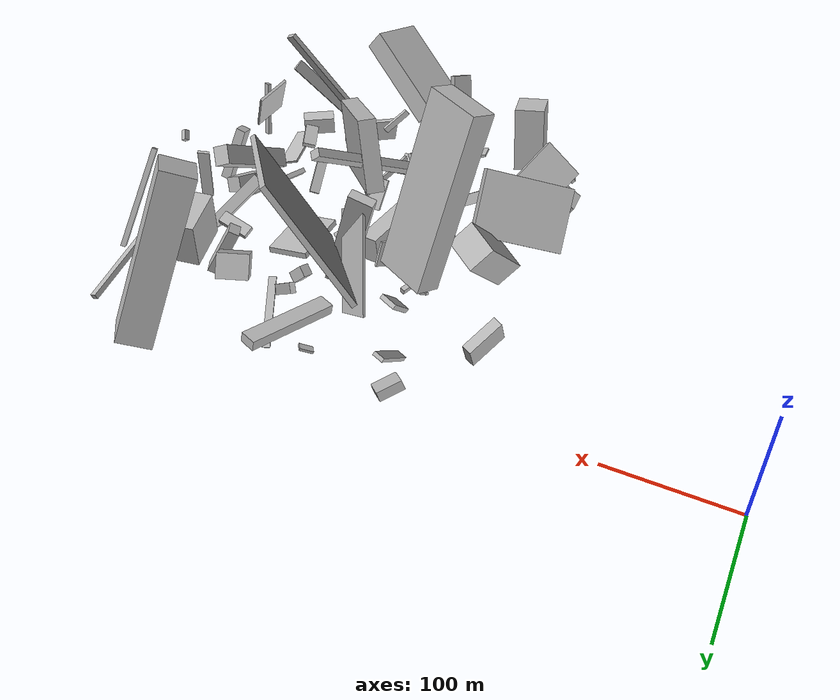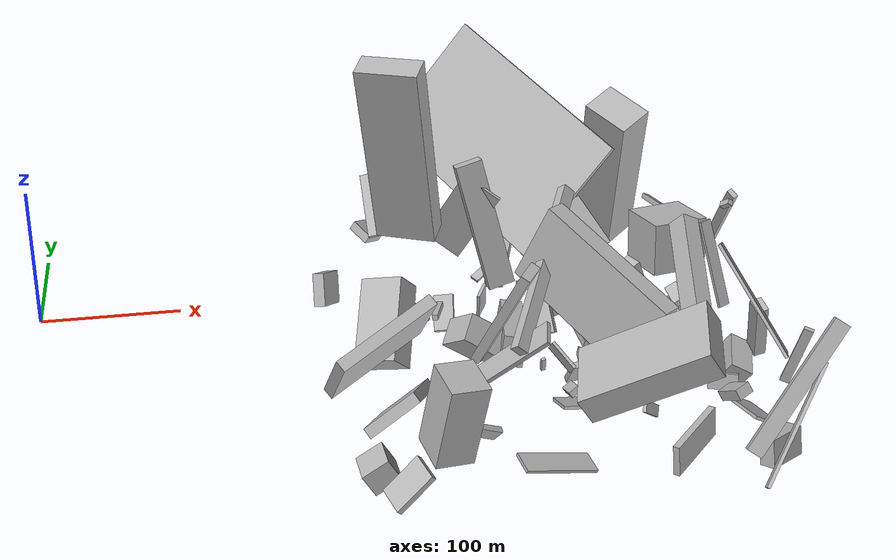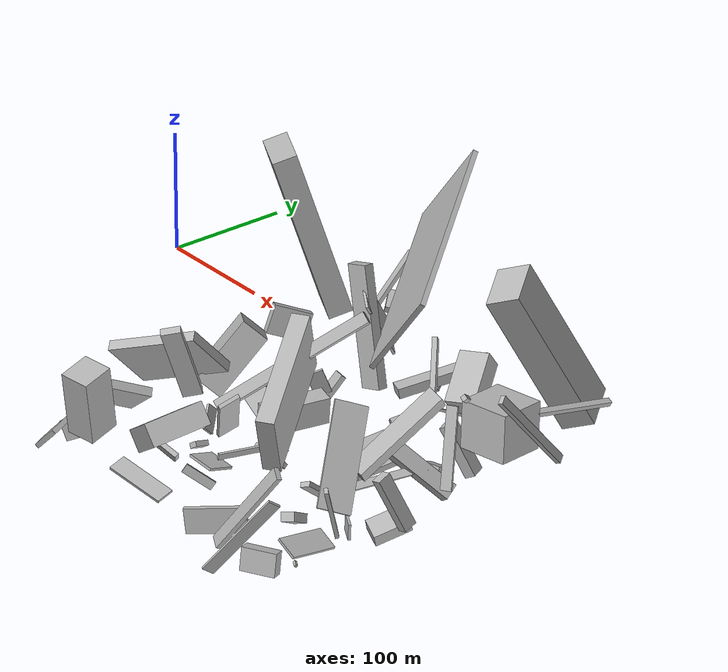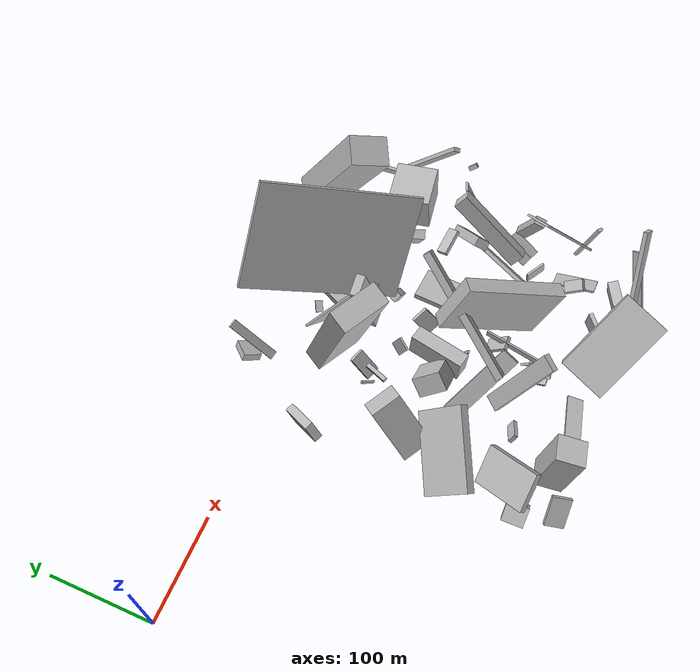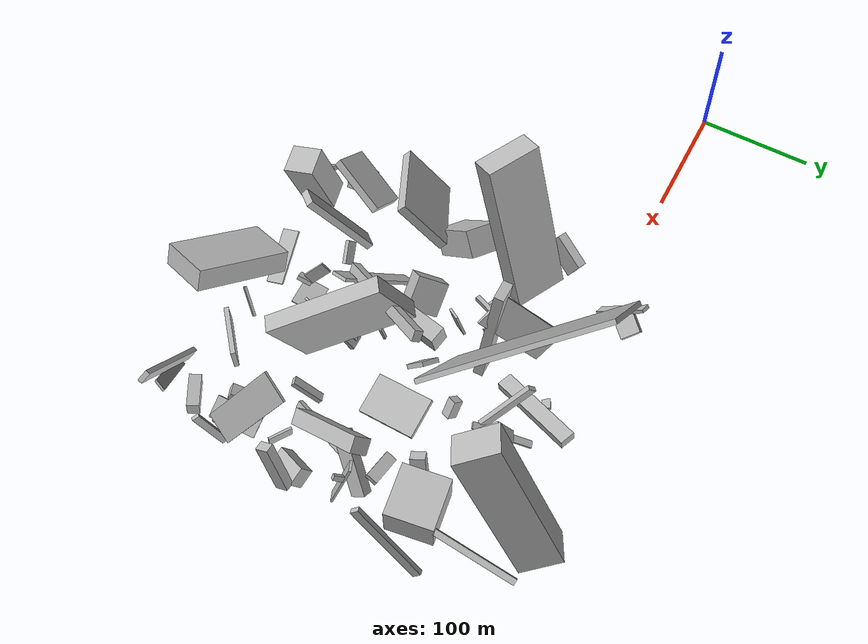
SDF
<sdf version="1.6">
 <world name="default">
  <model name="building_6">
   <static>0</static>
   <pose>383.57789830390834 -204.22839032764224 56.90118892235914 1.1419513842508067 -0.03035400887190286 -2.5071396313396574</pose>
   <link name="link">
    <gravity>0</gravity>
    <pose>0 0 50.0 0 0 0</pose>
    <collision name="collision"><geometry><box><size>14 57 100</size></box></geometry></collision>
    <visual name="visual">
     <cast_shadows>0</cast_shadows>
     <geometry><box><size>14 57 100</size></box></geometry>
     <material>
      <script>
       <uri>model://HANNAS_wall/materials/scripts</uri>
       <uri>model://HANNAS_wall/materials/textures</uri>
       <name>vrc/HANNAS_wall</name>
      </script>
     </material>
    </visual>
   </link>
  </model>
  <model name="building_9">
   <static>0</static>
   <pose>304.2907745728655 -58.22759774324887 75.836507082875 1.3048529523502757 0.08205028797164456 1.6205734096075415</pose>
   <link name="link">
    <gravity>0</gravity>
    <pose>0 0 9.5 0 0 0</pose>
    <collision name="collision"><geometry><box><size>8 95 19</size></box></geometry></collision>
    <visual name="visual">
     <cast_shadows>0</cast_shadows>
     <geometry><box><size>8 95 19</size></box></geometry>
     <material>
      <script>
       <uri>model://HANNAS_wall/materials/scripts</uri>
       <uri>model://HANNAS_wall/materials/textures</uri>
       <name>vrc/HANNAS_wall</name>
      </script>
     </material>
    </visual>
   </link>
  </model>
  <model name="building_11">
   <static>0</static>
   <pose>439.47429550103556 3.416906068397626 78.5099401154982 0.8400165274937765 -1.0716157159774935 -1.8438272145721253</pose>
   <link name="link">
    <gravity>0</gravity>
    <pose>0 0 18.0 0 0 0</pose>
    <collision name="collision"><geometry><box><size>132 27 36</size></box></geometry></collision>
    <visual name="visual">
     <cast_shadows>0</cast_shadows>
     <geometry><box><size>132 27 36</size></box></geometry>
     <material>
      <script>
       <uri>model://HANNAS_wall/materials/scripts</uri>
       <uri>model://HANNAS_wall/materials/textures</uri>
       <name>vrc/HANNAS_wall</name>
      </script>
     </material>
    </visual>
   </link>
  </model>
  <model name="building_14">
   <static>0</static>
   <pose>284.95008669527004 -123.20067489249129 24.118417519923735 0.9040310014824263 0.587848842570337 0.025496455703872795</pose>
   <link name="link">
    <gravity>0</gravity>
    <pose>0 0 13.5 0 0 0</pose>
    <collision name="collision"><geometry><box><size>29 19 27</size></box></geometry></collision>
    <visual name="visual">
     <cast_shadows>0</cast_shadows>
     <geometry><box><size>29 19 27</size></box></geometry>
     <material>
      <script>
       <uri>model://HANNAS_wall/materials/scripts</uri>
       <uri>model://HANNAS_wall/materials/textures</uri>
       <name>vrc/HANNAS_wall</name>
      </script>
     </material>
    </visual>
   </link>
  </model>
  <model name="building_15">
   <static>0</static>
   <pose>454.4709440644848 -47.34934510154349 33.18940693092354 -0.06209678522897362 -0.0214763122014824 0.1641329490324192</pose>
   <link name="link">
    <gravity>0</gravity>
    <pose>0 0 19.0 0 0 0</pose>
    <collision name="collision"><geometry><box><size>41 39 38</size></box></geometry></collision>
    <visual name="visual">
     <cast_shadows>0</cast_shadows>
     <geometry><box><size>41 39 38</size></box></geometry>
     <material>
      <script>
       <uri>model://HANNAS_wall/materials/scripts</uri>
       <uri>model://HANNAS_wall/materials/textures</uri>
       <name>vrc/HANNAS_wall</name>
      </script>
     </material>
    </visual>
   </link>
  </model>
  <model name="building_17">
   <static>0</static>
   <pose>279.39121196128315 -73.68338280042434 27.057425863141347 -1.5437950387450834 0.12738077929289962 2.7752094283203967</pose>
   <link name="link">
    <gravity>0</gravity>
    <pose>0 0 11.0 0 0 0</pose>
    <collision name="collision"><geometry><box><size>4 4 22</size></box></geometry></collision>
    <visual name="visual">
     <cast_shadows>0</cast_shadows>
     <geometry><box><size>4 4 22</size></box></geometry>
     <material>
      <script>
       <uri>model://HANNAS_wall/materials/scripts</uri>
       <uri>model://HANNAS_wall/materials/textures</uri>
       <name>vrc/HANNAS_wall</name>
      </script>
     </material>
    </visual>
   </link>
  </model>
  <model name="building_23">
   <static>0</static>
   <pose>394.47325753871127 -260.15664879753274 20.16209631838445 1.6265225817026203 0.11527512826865162 -2.408205424874494</pose>
   <link name="link">
    <gravity>0</gravity>
    <pose>0 0 2.0 0 0 0</pose>
    <collision name="collision"><geometry><box><size>46 20 4</size></box></geometry></collision>
    <visual name="visual">
     <cast_shadows>0</cast_shadows>
     <geometry><box><size>46 20 4</size></box></geometry>
     <material>
      <script>
       <uri>model://HANNAS_wall/materials/scripts</uri>
       <uri>model://HANNAS_wall/materials/textures</uri>
       <name>vrc/HANNAS_wall</name>
      </script>
     </material>
    </visual>
   </link>
  </model>
  <model name="building_24">
   <static>0</static>
   <pose>368.52958089554613 -74.11320984580192 97.15929962290211 -0.8549433892645674 -0.9122947049014914 0.001873142515514601</pose>
   <link name="link">
    <gravity>0</gravity>
    <pose>0 0 75.0 0 0 0</pose>
    <collision name="collision"><geometry><box><size>96 4 150</size></box></geometry></collision>
    <visual name="visual">
     <cast_shadows>0</cast_shadows>
     <geometry><box><size>96 4 150</size></box></geometry>
     <material>
      <script>
       <uri>model://HANNAS_wall/materials/scripts</uri>
       <uri>model://HANNAS_wall/materials/textures</uri>
       <name>vrc/HANNAS_wall</name>
      </script>
     </material>
    </visual>
   </link>
  </model>
  <model name="building_25">
   <static>0</static>
   <pose>333.89373754074586 -3.4831397383688563 30.375352631277753 1.3567494582369424 1.3775928349575601 0.9793957775255684</pose>
   <link name="link">
    <gravity>0</gravity>
    <pose>0 0 6.5 0 0 0</pose>
    <collision name="collision"><geometry><box><size>8 75 13</size></box></geometry></collision>
    <visual name="visual">
     <cast_shadows>0</cast_shadows>
     <geometry><box><size>8 75 13</size></box></geometry>
     <material>
      <script>
       <uri>model://HANNAS_wall/materials/scripts</uri>
       <uri>model://HANNAS_wall/materials/textures</uri>
       <name>vrc/HANNAS_wall</name>
      </script>
     </material>
    </visual>
   </link>
  </model>
  <model name="building_26">
   <static>0</static>
   <pose>251.39991961904443 -155.02052538114827 63.008092974921894 2.060386175716649 -0.8365651261437685 -1.4709617958473813</pose>
   <link name="link">
    <gravity>0</gravity>
    <pose>0 0 37.0 0 0 0</pose>
    <collision name="collision"><geometry><box><size>52 8 74</size></box></geometry></collision>
    <visual name="visual">
     <cast_shadows>0</cast_shadows>
     <geometry><box><size>52 8 74</size></box></geometry>
     <material>
      <script>
       <uri>model://HANNAS_wall/materials/scripts</uri>
       <uri>model://HANNAS_wall/materials/textures</uri>
       <name>vrc/HANNAS_wall</name>
      </script>
     </material>
    </visual>
   </link>
  </model>
  <model name="building_27">
   <static>0</static>
   <pose>216.03180781575657 -268.60667016050047 23.911611604162815 -1.8597437752975214 0.7883690492993546 -3.0548124770656906</pose>
   <link name="link">
    <gravity>0</gravity>
    <pose>0 0 9.0 0 0 0</pose>
    <collision name="collision"><geometry><box><size>28 4 18</size></box></geometry></collision>
    <visual name="visual">
     <cast_shadows>0</cast_shadows>
     <geometry><box><size>28 4 18</size></box></geometry>
     <material>
      <script>
       <uri>model://HANNAS_wall/materials/scripts</uri>
       <uri>model://HANNAS_wall/materials/textures</uri>
       <name>vrc/HANNAS_wall</name>
      </script>
     </material>
    </visual>
   </link>
  </model>
  <model name="building_30">
   <static>0</static>
   <pose>383.60919287319524 -109.015194323443 19.612738985877396 3.0942228701523478 -0.1732060797067562 3.1179830220011135</pose>
   <link name="link">
    <gravity>0</gravity>
    <pose>0 0 2.5 0 0 0</pose>
    <collision name="collision"><geometry><box><size>34 49 5</size></box></geometry></collision>
    <visual name="visual">
     <cast_shadows>0</cast_shadows>
     <geometry><box><size>34 49 5</size></box></geometry>
     <material>
      <script>
       <uri>model://HANNAS_wall/materials/scripts</uri>
       <uri>model://HANNAS_wall/materials/textures</uri>
       <name>vrc/HANNAS_wall</name>
      </script>
     </material>
    </visual>
   </link>
  </model>
  <model name="building_38">
   <static>0</static>
   <pose>277.00681764101626 -214.70572314998705 13.386953115068813 2.1299096249763987 0.4248775620785343 0.31512837918882247</pose>
   <link name="link">
    <gravity>0</gravity>
    <pose>0 0 2.0 0 0 0</pose>
    <collision name="collision"><geometry><box><size>20 9 4</size></box></geometry></collision>
    <visual name="visual">
     <cast_shadows>0</cast_shadows>
     <geometry><box><size>20 9 4</size></box></geometry>
     <material>
      <script>
       <uri>model://HANNAS_wall/materials/scripts</uri>
       <uri>model://HANNAS_wall/materials/textures</uri>
       <name>vrc/HANNAS_wall</name>
      </script>
     </material>
    </visual>
   </link>
  </model>
  <model name="building_48">
   <static>0</static>
   <pose>475.56276790490176 -95.75335472274831 97.16094596552546 -0.7807655237917941 -0.6749512489655869 1.0410163484661379</pose>
   <link name="link">
    <gravity>0</gravity>
    <pose>0 0 2.0 0 0 0</pose>
    <collision name="collision"><geometry><box><size>4 8 4</size></box></geometry></collision>
    <visual name="visual">
     <cast_shadows>0</cast_shadows>
     <geometry><box><size>4 8 4</size></box></geometry>
     <material>
      <script>
       <uri>model://HANNAS_wall/materials/scripts</uri>
       <uri>model://HANNAS_wall/materials/textures</uri>
       <name>vrc/HANNAS_wall</name>
      </script>
     </material>
    </visual>
   </link>
  </model>
  <model name="building_49">
   <static>0</static>
   <pose>344.60255442947926 -113.049276215063 17.49550386068492 -0.5447663231419287 -0.47890523572554733 -0.5494487582894221</pose>
   <link name="link">
    <gravity>0</gravity>
    <pose>0 0 11.5 0 0 0</pose>
    <collision name="collision"><geometry><box><size>16 4 23</size></box></geometry></collision>
    <visual name="visual">
     <cast_shadows>0</cast_shadows>
     <geometry><box><size>16 4 23</size></box></geometry>
     <material>
      <script>
       <uri>model://HANNAS_wall/materials/scripts</uri>
       <uri>model://HANNAS_wall/materials/textures</uri>
       <name>vrc/HANNAS_wall</name>
      </script>
     </material>
    </visual>
   </link>
  </model>
  <model name="building_51">
   <static>0</static>
   <pose>457.0648051527439 -156.1016571031237 15.28496218802949 2.044500118852943 -0.2970143607141097 1.2149989853647158</pose>
   <link name="link">
    <gravity>0</gravity>
    <pose>0 0 8.0 0 0 0</pose>
    <collision name="collision"><geometry><box><size>29 13 16</size></box></geometry></collision>
    <visual name="visual">
     <cast_shadows>0</cast_shadows>
     <geometry><box><size>29 13 16</size></box></geometry>
     <material>
      <script>
       <uri>model://HANNAS_wall/materials/scripts</uri>
       <uri>model://HANNAS_wall/materials/textures</uri>
       <name>vrc/HANNAS_wall</name>
      </script>
     </material>
    </visual>
   </link>
  </model>
  <model name="building_55">
   <static>0</static>
   <pose>303.9839218128122 -189.9037142034581 50.67838657084822 0.8230489497201009 -0.7176348545238028 -3.1207991166232714</pose>
   <link name="link">
    <gravity>0</gravity>
    <pose>0 0 64.0 0 0 0</pose>
    <collision name="collision"><geometry><box><size>9 7 128</size></box></geometry></collision>
    <visual name="visual">
     <cast_shadows>0</cast_shadows>
     <geometry><box><size>9 7 128</size></box></geometry>
     <material>
      <script>
       <uri>model://HANNAS_wall/materials/scripts</uri>
       <uri>model://HANNAS_wall/materials/textures</uri>
       <name>vrc/HANNAS_wall</name>
      </script>
     </material>
    </visual>
   </link>
  </model>
  <model name="building_63">
   <static>0</static>
   <pose>243.39934692082795 -258.675238442121 29.95810248764922 0.19226133190994682 0.07836951289636694 0.20381542422882498</pose>
   <link name="link">
    <gravity>0</gravity>
    <pose>0 0 27.0 0 0 0</pose>
    <collision name="collision"><geometry><box><size>24 26 54</size></box></geometry></collision>
    <visual name="visual">
     <cast_shadows>0</cast_shadows>
     <geometry><box><size>24 26 54</size></box></geometry>
     <material>
      <script>
       <uri>model://HANNAS_wall/materials/scripts</uri>
       <uri>model://HANNAS_wall/materials/textures</uri>
       <name>vrc/HANNAS_wall</name>
      </script>
     </material>
    </visual>
   </link>
  </model>
  <model name="building_67">
   <static>0</static>
   <pose>238.40203805918202 -116.58249721425688 34.30538912470565 -0.37425631309947094 -0.829793623421433 1.2757103410894608</pose>
   <link name="link">
    <gravity>0</gravity>
    <pose>0 0 11.5 0 0 0</pose>
    <collision name="collision"><geometry><box><size>56 29 23</size></box></geometry></collision>
    <visual name="visual">
     <cast_shadows>0</cast_shadows>
     <geometry><box><size>56 29 23</size></box></geometry>
     <material>
      <script>
       <uri>model://HANNAS_wall/materials/scripts</uri>
       <uri>model://HANNAS_wall/materials/textures</uri>
       <name>vrc/HANNAS_wall</name>
      </script>
     </material>
    </visual>
   </link>
  </model>
  <model name="building_70">
   <static>0</static>
   <pose>446.29511330368473 -273.44160596619275 58.53098253178112 -2.1500128974303196 -0.9368122692161301 0.27855371460841205</pose>
   <link name="link">
    <gravity>0</gravity>
    <pose>0 0 2.0 0 0 0</pose>
    <collision name="collision"><geometry><box><size>91 10 4</size></box></geometry></collision>
    <visual name="visual">
     <cast_shadows>0</cast_shadows>
     <geometry><box><size>91 10 4</size></box></geometry>
     <material>
      <script>
       <uri>model://HANNAS_wall/materials/scripts</uri>
       <uri>model://HANNAS_wall/materials/textures</uri>
       <name>vrc/HANNAS_wall</name>
      </script>
     </material>
    </visual>
   </link>
  </model>
  <model name="building_73">
   <static>0</static>
   <pose>327.7516120942917 -229.92359675743032 42.88074563764401 -1.871699953292934 -0.5896684478809172 0.21468918232423242</pose>
   <link name="link">
    <gravity>0</gravity>
    <pose>0 0 6.0 0 0 0</pose>
    <collision name="collision"><geometry><box><size>7 4 12</size></box></geometry></collision>
    <visual name="visual">
     <cast_shadows>0</cast_shadows>
     <geometry><box><size>7 4 12</size></box></geometry>
     <material>
      <script>
       <uri>model://HANNAS_wall/materials/scripts</uri>
       <uri>model://HANNAS_wall/materials/textures</uri>
       <name>vrc/HANNAS_wall</name>
      </script>
     </material>
    </visual>
   </link>
  </model>
  <model name="building_82">
   <static>0</static>
   <pose>262.1505922465356 -46.76354964170182 73.44899717029037 0.3101156944267198 -0.015507979285784396 -0.4831144540270824</pose>
   <link name="link">
    <gravity>0</gravity>
    <pose>0 0 68.5 0 0 0</pose>
    <collision name="collision"><geometry><box><size>42 19 137</size></box></geometry></collision>
    <visual name="visual">
     <cast_shadows>0</cast_shadows>
     <geometry><box><size>42 19 137</size></box></geometry>
     <material>
      <script>
       <uri>model://HANNAS_wall/materials/scripts</uri>
       <uri>model://HANNAS_wall/materials/textures</uri>
       <name>vrc/HANNAS_wall</name>
      </script>
     </material>
    </visual>
   </link>
  </model>
  <model name="building_83">
   <static>0</static>
   <pose>314.46042327420514 -128.22524931024626 19.00306306879429 -0.11455420945809416 0.0025972512434748007 -1.7672561805548386</pose>
   <link name="link">
    <gravity>0</gravity>
    <pose>0 0 11.0 0 0 0</pose>
    <collision name="collision"><geometry><box><size>52 15 22</size></box></geometry></collision>
    <visual name="visual">
     <cast_shadows>0</cast_shadows>
     <geometry><box><size>52 15 22</size></box></geometry>
     <material>
      <script>
       <uri>model://HANNAS_wall/materials/scripts</uri>
       <uri>model://HANNAS_wall/materials/textures</uri>
       <name>vrc/HANNAS_wall</name>
      </script>
     </material>
    </visual>
   </link>
  </model>
  <model name="building_85">
   <static>0</static>
   <pose>231.34351890339735 -204.7583001711951 31.970573675961937 1.0941180418454646 -0.6709670635515399 -0.06488631645940925</pose>
   <link name="link">
    <gravity>0</gravity>
    <pose>0 0 26.0 0 0 0</pose>
    <collision name="collision"><geometry><box><size>36 7 52</size></box></geometry></collision>
    <visual name="visual">
     <cast_shadows>0</cast_shadows>
     <geometry><box><size>36 7 52</size></box></geometry>
     <material>
      <script>
       <uri>model://HANNAS_wall/materials/scripts</uri>
       <uri>model://HANNAS_wall/materials/textures</uri>
       <name>vrc/HANNAS_wall</name>
      </script>
     </material>
    </visual>
   </link>
  </model>
  <model name="building_91">
   <static>0</static>
   <pose>467.8556388498441 -8.5840653780253 55.2397305254703 -0.38086721630618986 -0.17860737742972727 -1.6136415428610005</pose>
   <link name="link">
    <gravity>0</gravity>
    <pose>0 0 2.0 0 0 0</pose>
    <collision name="collision"><geometry><box><size>105 5 4</size></box></geometry></collision>
    <visual name="visual">
     <cast_shadows>0</cast_shadows>
     <geometry><box><size>105 5 4</size></box></geometry>
     <material>
      <script>
       <uri>model://HANNAS_wall/materials/scripts</uri>
       <uri>model://HANNAS_wall/materials/textures</uri>
       <name>vrc/HANNAS_wall</name>
      </script>
     </material>
    </visual>
   </link>
  </model>
  <model name="building_97">
   <static>0</static>
   <pose>401.54535719932755 -179.17557603337568 20.039173962307437 -1.0896380192072743 -0.6962746204409888 -1.4679566995114668</pose>
   <link name="link">
    <gravity>0</gravity>
    <pose>0 0 4.0 0 0 0</pose>
    <collision name="collision"><geometry><box><size>28 4 8</size></box></geometry></collision>
    <visual name="visual">
     <cast_shadows>0</cast_shadows>
     <geometry><box><size>28 4 8</size></box></geometry>
     <material>
      <script>
       <uri>model://HANNAS_wall/materials/scripts</uri>
       <uri>model://HANNAS_wall/materials/textures</uri>
       <name>vrc/HANNAS_wall</name>
      </script>
     </material>
    </visual>
   </link>
  </model>
  <model name="building_103">
   <static>0</static>
   <pose>454.3502702082612 -191.60340568971594 74.89543578578963 2.2173265603349654 -0.3592588808189664 -2.0475599191577296</pose>
   <link name="link">
    <gravity>0</gravity>
    <pose>0 0 1.0 0 0 0</pose>
    <collision name="collision"><geometry><box><size>26 80 2</size></box></geometry></collision>
    <visual name="visual">
     <cast_shadows>0</cast_shadows>
     <geometry><box><size>26 80 2</size></box></geometry>
     <material>
      <script>
       <uri>model://HANNAS_wall/materials/scripts</uri>
       <uri>model://HANNAS_wall/materials/textures</uri>
       <name>vrc/HANNAS_wall</name>
      </script>
     </material>
    </visual>
   </link>
  </model>
  <model name="building_104">
   <static>0</static>
   <pose>362.0645276272539 -71.76567061837356 16.715074042652972 1.2045574201277034 -0.8377932131333217 3.0359619460967457</pose>
   <link name="link">
    <gravity>0</gravity>
    <pose>0 0 4.0 0 0 0</pose>
    <collision name="collision"><geometry><box><size>16 9 8</size></box></geometry></collision>
    <visual name="visual">
     <cast_shadows>0</cast_shadows>
     <geometry><box><size>16 9 8</size></box></geometry>
     <material>
      <script>
       <uri>model://HANNAS_wall/materials/scripts</uri>
       <uri>model://HANNAS_wall/materials/textures</uri>
       <name>vrc/HANNAS_wall</name>
      </script>
     </material>
    </visual>
   </link>
  </model>
  <model name="building_112">
   <static>0</static>
   <pose>401.61860214186885 -37.77842897781125 40.04621979938137 0.8973849615538907 0.11248669489644866 -2.6895015504838264</pose>
   <link name="link">
    <gravity>0</gravity>
    <pose>0 0 21.0 0 0 0</pose>
    <collision name="collision"><geometry><box><size>24 19 42</size></box></geometry></collision>
    <visual name="visual">
     <cast_shadows>0</cast_shadows>
     <geometry><box><size>24 19 42</size></box></geometry>
     <material>
      <script>
       <uri>model://HANNAS_wall/materials/scripts</uri>
       <uri>model://HANNAS_wall/materials/textures</uri>
       <name>vrc/HANNAS_wall</name>
      </script>
     </material>
    </visual>
   </link>
  </model>
  <model name="building_114">
   <static>0</static>
   <pose>471.50692810051567 -210.84825765563653 25.415038186823214 0.2472732576372185 -0.19435950740359115 0.9683373716963185</pose>
   <link name="link">
    <gravity>0</gravity>
    <pose>0 0 22.5 0 0 0</pose>
    <collision name="collision"><geometry><box><size>3 6 45</size></box></geometry></collision>
    <visual name="visual">
     <cast_shadows>0</cast_shadows>
     <geometry><box><size>3 6 45</size></box></geometry>
     <material>
      <script>
       <uri>model://HANNAS_wall/materials/scripts</uri>
       <uri>model://HANNAS_wall/materials/textures</uri>
       <name>vrc/HANNAS_wall</name>
      </script>
     </material>
    </visual>
   </link>
  </model>
  <model name="building_118">
   <static>0</static>
   <pose>456.37767800610635 -235.4101191348226 3.7798790450354156 0.8777824030578248 0.23771406606677264 -0.4880924123712576</pose>
   <link name="link">
    <gravity>0</gravity>
    <pose>0 0 1.0 0 0 0</pose>
    <collision name="collision"><geometry><box><size>5 2 2</size></box></geometry></collision>
    <visual name="visual">
     <cast_shadows>0</cast_shadows>
     <geometry><box><size>5 2 2</size></box></geometry>
     <material>
      <script>
       <uri>model://HANNAS_wall/materials/scripts</uri>
       <uri>model://HANNAS_wall/materials/textures</uri>
       <name>vrc/HANNAS_wall</name>
      </script>
     </material>
    </visual>
   </link>
  </model>
  <model name="building_133">
   <static>0</static>
   <pose>302.4617985728363 -94.77827978927212 38.83563987048484 -1.6931396986352916 0.36293377044959385 -2.1607580977612395</pose>
   <link name="link">
    <gravity>0</gravity>
    <pose>0 0 1.0 0 0 0</pose>
    <collision name="collision"><geometry><box><size>13 21 2</size></box></geometry></collision>
    <visual name="visual">
     <cast_shadows>0</cast_shadows>
     <geometry><box><size>13 21 2</size></box></geometry>
     <material>
      <script>
       <uri>model://HANNAS_wall/materials/scripts</uri>
       <uri>model://HANNAS_wall/materials/textures</uri>
       <name>vrc/HANNAS_wall</name>
      </script>
     </material>
    </visual>
   </link>
  </model>
  <model name="building_135">
   <static>0</static>
   <pose>292.15035999603737 -18.148164938841003 47.11764301374768 -0.5643105735925257 0.32354991451107146 -2.2498110120288026</pose>
   <link name="link">
    <gravity>0</gravity>
    <pose>0 0 37.5 0 0 0</pose>
    <collision name="collision"><geometry><box><size>2 30 75</size></box></geometry></collision>
    <visual name="visual">
     <cast_shadows>0</cast_shadows>
     <geometry><box><size>2 30 75</size></box></geometry>
     <material>
      <script>
       <uri>model://HANNAS_wall/materials/scripts</uri>
       <uri>model://HANNAS_wall/materials/textures</uri>
       <name>vrc/HANNAS_wall</name>
      </script>
     </material>
    </visual>
   </link>
  </model>
  <model name="building_138">
   <static>0</static>
   <pose>278.1956493255061 -192.74653491175818 52.70306611859519 0.4745808724221298 -0.19424970054444718 0.8820511405569049</pose>
   <link name="link">
    <gravity>0</gravity>
    <pose>0 0 40.0 0 0 0</pose>
    <collision name="collision"><geometry><box><size>15 6 80</size></box></geometry></collision>
    <visual name="visual">
     <cast_shadows>0</cast_shadows>
     <geometry><box><size>15 6 80</size></box></geometry>
     <material>
      <script>
       <uri>model://HANNAS_wall/materials/scripts</uri>
       <uri>model://HANNAS_wall/materials/textures</uri>
       <name>vrc/HANNAS_wall</name>
      </script>
     </material>
    </visual>
   </link>
  </model>
  <model name="building_145">
   <static>0</static>
   <pose>436.565622325031 -227.9483034953991 31.19367870672413 -2.6383559290535836 0.9755157839634844 -0.711199905079863</pose>
   <link name="link">
    <gravity>0</gravity>
    <pose>0 0 9.0 0 0 0</pose>
    <collision name="collision"><geometry><box><size>7 11 18</size></box></geometry></collision>
    <visual name="visual">
     <cast_shadows>0</cast_shadows>
     <geometry><box><size>7 11 18</size></box></geometry>
     <material>
      <script>
       <uri>model://HANNAS_wall/materials/scripts</uri>
       <uri>model://HANNAS_wall/materials/textures</uri>
       <name>vrc/HANNAS_wall</name>
      </script>
     </material>
    </visual>
   </link>
  </model>
  <model name="building_149">
   <static>0</static>
   <pose>333.5998005115726 -150.3510599527896 17.09054804708893 2.0911836192168725 -1.1597556468177674 -1.9173259581688527</pose>
   <link name="link">
    <gravity>0</gravity>
    <pose>0 0 1.5 0 0 0</pose>
    <collision name="collision"><geometry><box><size>11 2 3</size></box></geometry></collision>
    <visual name="visual">
     <cast_shadows>0</cast_shadows>
     <geometry><box><size>11 2 3</size></box></geometry>
     <material>
      <script>
       <uri>model://HANNAS_wall/materials/scripts</uri>
       <uri>model://HANNAS_wall/materials/textures</uri>
       <name>vrc/HANNAS_wall</name>
      </script>
     </material>
    </visual>
   </link>
  </model>
  <model name="building_150">
   <static>0</static>
   <pose>325.0659633574588 -2.868263627026317 11.439304577118161 0.4438750556080601 0.21593105725362285 -0.9759729706287303</pose>
   <link name="link">
    <gravity>0</gravity>
    <pose>0 0 1.0 0 0 0</pose>
    <collision name="collision"><geometry><box><size>7 11 2</size></box></geometry></collision>
    <visual name="visual">
     <cast_shadows>0</cast_shadows>
     <geometry><box><size>7 11 2</size></box></geometry>
     <material>
      <script>
       <uri>model://HANNAS_wall/materials/scripts</uri>
       <uri>model://HANNAS_wall/materials/textures</uri>
       <name>vrc/HANNAS_wall</name>
      </script>
     </material>
    </visual>
   </link>
  </model>
  <model name="building_155">
   <static>0</static>
   <pose>348.055576804262 -173.51307816407865 25.385165603856642 2.264522048476455 -0.11141931988417543 0.058347885597432654</pose>
   <link name="link">
    <gravity>0</gravity>
    <pose>0 0 2.0 0 0 0</pose>
    <collision name="collision"><geometry><box><size>13 26 4</size></box></geometry></collision>
    <visual name="visual">
     <cast_shadows>0</cast_shadows>
     <geometry><box><size>13 26 4</size></box></geometry>
     <material>
      <script>
       <uri>model://HANNAS_wall/materials/scripts</uri>
       <uri>model://HANNAS_wall/materials/textures</uri>
       <name>vrc/HANNAS_wall</name>
      </script>
     </material>
    </visual>
   </link>
  </model>
  <model name="building_171">
   <static>0</static>
   <pose>245.45084517054156 3.9576594368628246 47.242878002487984 -0.3699440302560678 0.7330625949207309 1.0653722531225118</pose>
   <link name="link">
    <gravity>0</gravity>
    <pose>0 0 25.0 0 0 0</pose>
    <collision name="collision"><geometry><box><size>3 8 50</size></box></geometry></collision>
    <visual name="visual">
     <cast_shadows>0</cast_shadows>
     <geometry><box><size>3 8 50</size></box></geometry>
     <material>
      <script>
       <uri>model://HANNAS_wall/materials/scripts</uri>
       <uri>model://HANNAS_wall/materials/textures</uri>
       <name>vrc/HANNAS_wall</name>
      </script>
     </material>
    </visual>
   </link>
  </model>
  <model name="building_181">
   <static>0</static>
   <pose>333.47365689529795 -218.58286210877534 26.79761281498773 -0.0826656178773412 -0.26915142660709046 -1.5269463827370533</pose>
   <link name="link">
    <gravity>0</gravity>
    <pose>0 0 1.0 0 0 0</pose>
    <collision name="collision"><geometry><box><size>21 24 2</size></box></geometry></collision>
    <visual name="visual">
     <cast_shadows>0</cast_shadows>
     <geometry><box><size>21 24 2</size></box></geometry>
     <material>
      <script>
       <uri>model://HANNAS_wall/materials/scripts</uri>
       <uri>model://HANNAS_wall/materials/textures</uri>
       <name>vrc/HANNAS_wall</name>
      </script>
     </material>
    </visual>
   </link>
  </model>
  <model name="building_182">
   <static>0</static>
   <pose>432.5729568160575 -161.9976675944684 42.76328506035886 0.6363324115963241 0.798762735513743 2.204037085593574</pose>
   <link name="link">
    <gravity>0</gravity>
    <pose>0 0 40.0 0 0 0</pose>
    <collision name="collision"><geometry><box><size>15 13 80</size></box></geometry></collision>
    <visual name="visual">
     <cast_shadows>0</cast_shadows>
     <geometry><box><size>15 13 80</size></box></geometry>
     <material>
      <script>
       <uri>model://HANNAS_wall/materials/scripts</uri>
       <uri>model://HANNAS_wall/materials/textures</uri>
       <name>vrc/HANNAS_wall</name>
      </script>
     </material>
    </visual>
   </link>
  </model>
  <model name="building_183">
   <static>0</static>
   <pose>284.1520436787358 -67.19348629969406 15.572549081112012 -0.2616176086613399 -0.8182708179629435 1.417238863963029</pose>
   <link name="link">
    <gravity>0</gravity>
    <pose>0 0 2.0 0 0 0</pose>
    <collision name="collision"><geometry><box><size>26 14 4</size></box></geometry></collision>
    <visual name="visual">
     <cast_shadows>0</cast_shadows>
     <geometry><box><size>26 14 4</size></box></geometry>
     <material>
      <script>
       <uri>model://HANNAS_wall/materials/scripts</uri>
       <uri>model://HANNAS_wall/materials/textures</uri>
       <name>vrc/HANNAS_wall</name>
      </script>
     </material>
    </visual>
   </link>
  </model>
  <model name="building_184">
   <static>0</static>
   <pose>478.4364509134882 -161.13406568383144 37.77076390849227 2.1924989090931253 -1.1371442210406337 -2.128613617732462</pose>
   <link name="link">
    <gravity>0</gravity>
    <pose>0 0 4.0 0 0 0</pose>
    <collision name="collision"><geometry><box><size>46 11 8</size></box></geometry></collision>
    <visual name="visual">
     <cast_shadows>0</cast_shadows>
     <geometry><box><size>46 11 8</size></box></geometry>
     <material>
      <script>
       <uri>model://HANNAS_wall/materials/scripts</uri>
       <uri>model://HANNAS_wall/materials/textures</uri>
       <name>vrc/HANNAS_wall</name>
      </script>
     </material>
    </visual>
   </link>
  </model>
  <model name="building_191">
   <static>0</static>
   <pose>418.71598572220046 -176.09659178371308 24.417993729660537 1.3740665912107528 -0.8300654281930665 2.914607128276717</pose>
   <link name="link">
    <gravity>0</gravity>
    <pose>0 0 37.0 0 0 0</pose>
    <collision name="collision"><geometry><box><size>6 4 74</size></box></geometry></collision>
    <visual name="visual">
     <cast_shadows>0</cast_shadows>
     <geometry><box><size>6 4 74</size></box></geometry>
     <material>
      <script>
       <uri>model://HANNAS_wall/materials/scripts</uri>
       <uri>model://HANNAS_wall/materials/textures</uri>
       <name>vrc/HANNAS_wall</name>
      </script>
     </material>
    </visual>
   </link>
  </model>
  <model name="building_193">
   <static>0</static>
   <pose>453.6858380036856 -185.33849223501747 10.84757925114382 -2.6959919638958287 -1.453029013397107 2.1405278652208772</pose>
   <link name="link">
    <gravity>0</gravity>
    <pose>0 0 10.0 0 0 0</pose>
    <collision name="collision"><geometry><box><size>12 2 20</size></box></geometry></collision>
    <visual name="visual">
     <cast_shadows>0</cast_shadows>
     <geometry><box><size>12 2 20</size></box></geometry>
     <material>
      <script>
       <uri>model://HANNAS_wall/materials/scripts</uri>
       <uri>model://HANNAS_wall/materials/textures</uri>
       <name>vrc/HANNAS_wall</name>
      </script>
     </material>
    </visual>
   </link>
  </model>
  <model name="building_200">
   <static>0</static>
   <pose>299.176345662305 -175.31638227987514 34.673479941932094 0.5265548531254375 -0.7631996194037394 -0.6251800809870982</pose>
   <link name="link">
    <gravity>0</gravity>
    <pose>0 0 1.5 0 0 0</pose>
    <collision name="collision"><geometry><box><size>80 17 3</size></box></geometry></collision>
    <visual name="visual">
     <cast_shadows>0</cast_shadows>
     <geometry><box><size>80 17 3</size></box></geometry>
     <material>
      <script>
       <uri>model://HANNAS_wall/materials/scripts</uri>
       <uri>model://HANNAS_wall/materials/textures</uri>
       <name>vrc/HANNAS_wall</name>
      </script>
     </material>
    </visual>
   </link>
  </model>
  <model name="building_203">
   <static>0</static>
   <pose>423.6150980578343 -62.50102102185031 23.555846911976474 -0.17381668105031026 -1.079134459435203 -2.568218053852761</pose>
   <link name="link">
    <gravity>0</gravity>
    <pose>0 0 4.5 0 0 0</pose>
    <collision name="collision"><geometry><box><size>43 12 9</size></box></geometry></collision>
    <visual name="visual">
     <cast_shadows>0</cast_shadows>
     <geometry><box><size>43 12 9</size></box></geometry>
     <material>
      <script>
       <uri>model://HANNAS_wall/materials/scripts</uri>
       <uri>model://HANNAS_wall/materials/textures</uri>
       <name>vrc/HANNAS_wall</name>
      </script>
     </material>
    </visual>
   </link>
  </model>
  <model name="building_204">
   <static>0</static>
   <pose>324.78726650245346 -255.1026732110239 62.552951123607095 -0.4502924190375903 -0.9589296897754065 -3.0784515882958017</pose>
   <link name="link">
    <gravity>0</gravity>
    <pose>0 0 40.0 0 0 0</pose>
    <collision name="collision"><geometry><box><size>18 44 80</size></box></geometry></collision>
    <visual name="visual">
     <cast_shadows>0</cast_shadows>
     <geometry><box><size>18 44 80</size></box></geometry>
     <material>
      <script>
       <uri>model://HANNAS_wall/materials/scripts</uri>
       <uri>model://HANNAS_wall/materials/textures</uri>
       <name>vrc/HANNAS_wall</name>
      </script>
     </material>
    </visual>
   </link>
  </model>
  <model name="building_205">
   <static>0</static>
   <pose>206.7183245408546 -234.16298799806867 12.308746064882298 1.5981091792824724 -0.5554730932110092 0.014195553426449433</pose>
   <link name="link">
    <gravity>0</gravity>
    <pose>0 0 10.0 0 0 0</pose>
    <collision name="collision"><geometry><box><size>18 16 20</size></box></geometry></collision>
    <visual name="visual">
     <cast_shadows>0</cast_shadows>
     <geometry><box><size>18 16 20</size></box></geometry>
     <material>
      <script>
       <uri>model://HANNAS_wall/materials/scripts</uri>
       <uri>model://HANNAS_wall/materials/textures</uri>
       <name>vrc/HANNAS_wall</name>
      </script>
     </material>
    </visual>
   </link>
  </model>
  <model name="building_206">
   <static>0</static>
   <pose>439.9460455075447 -111.06223735780232 29.344240412767004 0.859715766128883 -0.5495377374298038 1.8272692084138662</pose>
   <link name="link">
    <gravity>0</gravity>
    <pose>0 0 4.5 0 0 0</pose>
    <collision name="collision"><geometry><box><size>13 54 9</size></box></geometry></collision>
    <visual name="visual">
     <cast_shadows>0</cast_shadows>
     <geometry><box><size>13 54 9</size></box></geometry>
     <material>
      <script>
       <uri>model://HANNAS_wall/materials/scripts</uri>
       <uri>model://HANNAS_wall/materials/textures</uri>
       <name>vrc/HANNAS_wall</name>
      </script>
     </material>
    </visual>
   </link>
  </model>
  <model name="building_208">
   <static>0</static>
   <pose>329.6743752768789 -218.01898290250355 50.76916385470539 -0.8740115630009956 -0.39117043468813834 0.4034025987577775</pose>
   <link name="link">
    <gravity>0</gravity>
    <pose>0 0 10.0 0 0 0</pose>
    <collision name="collision"><geometry><box><size>2 10 20</size></box></geometry></collision>
    <visual name="visual">
     <cast_shadows>0</cast_shadows>
     <geometry><box><size>2 10 20</size></box></geometry>
     <material>
      <script>
       <uri>model://HANNAS_wall/materials/scripts</uri>
       <uri>model://HANNAS_wall/materials/textures</uri>
       <name>vrc/HANNAS_wall</name>
      </script>
     </material>
    </visual>
   </link>
  </model>
  <model name="building_209">
   <static>0</static>
   <pose>265.1621402106158 -79.25646946138382 25.231473996840663 -1.550451186942194 -0.6745565229644571 2.423757969918557</pose>
   <link name="link">
    <gravity>0</gravity>
    <pose>0 0 1.0 0 0 0</pose>
    <collision name="collision"><geometry><box><size>16 2 2</size></box></geometry></collision>
    <visual name="visual">
     <cast_shadows>0</cast_shadows>
     <geometry><box><size>16 2 2</size></box></geometry>
     <material>
      <script>
       <uri>model://HANNAS_wall/materials/scripts</uri>
       <uri>model://HANNAS_wall/materials/textures</uri>
       <name>vrc/HANNAS_wall</name>
      </script>
     </material>
    </visual>
   </link>
  </model>
  <model name="building_215">
   <static>0</static>
   <pose>365.48128822898383 -21.588795050116108 17.407991178190024 3.123543877335802 -0.5433421275638629 -1.2175514373782252</pose>
   <link name="link">
    <gravity>0</gravity>
    <pose>0 0 1.0 0 0 0</pose>
    <collision name="collision"><geometry><box><size>55 6 2</size></box></geometry></collision>
    <visual name="visual">
     <cast_shadows>0</cast_shadows>
     <geometry><box><size>55 6 2</size></box></geometry>
     <material>
      <script>
       <uri>model://HANNAS_wall/materials/scripts</uri>
       <uri>model://HANNAS_wall/materials/textures</uri>
       <name>vrc/HANNAS_wall</name>
      </script>
     </material>
    </visual>
   </link>
  </model>
  <model name="building_222">
   <static>0</static>
   <pose>436.1409877776847 -87.0574398888644 22.109901061759093 1.2257332932783733 -0.2478841372059774 -0.10519812922017993</pose>
   <link name="link">
    <gravity>0</gravity>
    <pose>0 0 5.0 0 0 0</pose>
    <collision name="collision"><geometry><box><size>26 5 10</size></box></geometry></collision>
    <visual name="visual">
     <cast_shadows>0</cast_shadows>
     <geometry><box><size>26 5 10</size></box></geometry>
     <material>
      <script>
       <uri>model://HANNAS_wall/materials/scripts</uri>
       <uri>model://HANNAS_wall/materials/textures</uri>
       <name>vrc/HANNAS_wall</name>
      </script>
     </material>
    </visual>
   </link>
  </model>
  <model name="building_226">
   <static>0</static>
   <pose>202.73933893822675 -49.89498461658636 21.351808418308472 0.3581847981649433 0.16122446420855605 2.7208217538697594</pose>
   <link name="link">
    <gravity>0</gravity>
    <pose>0 0 11.5 0 0 0</pose>
    <collision name="collision"><geometry><box><size>8 31 23</size></box></geometry></collision>
    <visual name="visual">
     <cast_shadows>0</cast_shadows>
     <geometry><box><size>8 31 23</size></box></geometry>
     <material>
      <script>
       <uri>model://HANNAS_wall/materials/scripts</uri>
       <uri>model://HANNAS_wall/materials/textures</uri>
       <name>vrc/HANNAS_wall</name>
      </script>
     </material>
    </visual>
   </link>
  </model>
  <model name="building_228">
   <static>0</static>
   <pose>350.499380172713 -26.598096094742594 43.15253928774374 1.4278027517527976 0.8210579182431701 2.21209032782244</pose>
   <link name="link">
    <gravity>0</gravity>
    <pose>0 0 2.0 0 0 0</pose>
    <collision name="collision"><geometry><box><size>8 56 4</size></box></geometry></collision>
    <visual name="visual">
     <cast_shadows>0</cast_shadows>
     <geometry><box><size>8 56 4</size></box></geometry>
     <material>
      <script>
       <uri>model://HANNAS_wall/materials/scripts</uri>
       <uri>model://HANNAS_wall/materials/textures</uri>
       <name>vrc/HANNAS_wall</name>
      </script>
     </material>
    </visual>
   </link>
  </model>
  <model name="building_230">
   <static>0</static>
   <pose>465.79726423210104 -103.03110820557565 56.94923930781425 1.240183741863381 -0.10155106400328014 0.4008369378375998</pose>
   <link name="link">
    <gravity>0</gravity>
    <pose>0 0 1.0 0 0 0</pose>
    <collision name="collision"><geometry><box><size>9 62 2</size></box></geometry></collision>
    <visual name="visual">
     <cast_shadows>0</cast_shadows>
     <geometry><box><size>9 62 2</size></box></geometry>
     <material>
      <script>
       <uri>model://HANNAS_wall/materials/scripts</uri>
       <uri>model://HANNAS_wall/materials/textures</uri>
       <name>vrc/HANNAS_wall</name>
      </script>
     </material>
    </visual>
   </link>
  </model>
  <model name="building_234">
   <static>0</static>
   <pose>248.61444021731805 22.500116377146888 37.18757947903581 1.085355801914723 -0.24933615910565687 -2.315452725193929</pose>
   <link name="link">
    <gravity>0</gravity>
    <pose>0 0 8.5 0 0 0</pose>
    <collision name="collision"><geometry><box><size>19 7 17</size></box></geometry></collision>
    <visual name="visual">
     <cast_shadows>0</cast_shadows>
     <geometry><box><size>19 7 17</size></box></geometry>
     <material>
      <script>
       <uri>model://HANNAS_wall/materials/scripts</uri>
       <uri>model://HANNAS_wall/materials/textures</uri>
       <name>vrc/HANNAS_wall</name>
      </script>
     </material>
    </visual>
   </link>
  </model>
  <model name="building_242">
   <static>0</static>
   <pose>490.1348944005126 -46.890952616973316 66.69504697369497 -2.576480976163346 -0.8951977063180867 -1.7150768268077035</pose>
   <link name="link">
    <gravity>0</gravity>
    <pose>0 0 3.5 0 0 0</pose>
    <collision name="collision"><geometry><box><size>80 4 7</size></box></geometry></collision>
    <visual name="visual">
     <cast_shadows>0</cast_shadows>
     <geometry><box><size>80 4 7</size></box></geometry>
     <material>
      <script>
       <uri>model://HANNAS_wall/materials/scripts</uri>
       <uri>model://HANNAS_wall/materials/textures</uri>
       <name>vrc/HANNAS_wall</name>
      </script>
     </material>
    </visual>
   </link>
  </model>
  <model name="building_243">
   <static>0</static>
   <pose>444.89935453767555 -256.24378062672315 10.89522568974757 -0.09597274832139484 1.3737564499513302 -1.1515789841538895</pose>
   <link name="link">
    <gravity>0</gravity>
    <pose>0 0 5.0 0 0 0</pose>
    <collision name="collision"><geometry><box><size>18 27 10</size></box></geometry></collision>
    <visual name="visual">
     <cast_shadows>0</cast_shadows>
     <geometry><box><size>18 27 10</size></box></geometry>
     <material>
      <script>
       <uri>model://HANNAS_wall/materials/scripts</uri>
       <uri>model://HANNAS_wall/materials/textures</uri>
       <name>vrc/HANNAS_wall</name>
      </script>
     </material>
    </visual>
   </link>
  </model>
  <model name="building_244">
   <static>0</static>
   <pose>331.11770655531416 -257.98985945315565 11.264736420330705 -0.6993343815951927 1.2542010941517212 2.6284125168812205</pose>
   <link name="link">
    <gravity>0</gravity>
    <pose>0 0 24.0 0 0 0</pose>
    <collision name="collision"><geometry><box><size>2 15 48</size></box></geometry></collision>
    <visual name="visual">
     <cast_shadows>0</cast_shadows>
     <geometry><box><size>2 15 48</size></box></geometry>
     <material>
      <script>
       <uri>model://HANNAS_wall/materials/scripts</uri>
       <uri>model://HANNAS_wall/materials/textures</uri>
       <name>vrc/HANNAS_wall</name>
      </script>
     </material>
    </visual>
   </link>
  </model>
  <model name="building_251">
   <static>0</static>
   <pose>366.9913410339609 -254.11367177415892 41.707165419623266 1.7631048318621294 -0.5966420075895773 -2.3198544037551363</pose>
   <link name="link">
    <gravity>0</gravity>
    <pose>0 0 1.0 0 0 0</pose>
    <collision name="collision"><geometry><box><size>25 7 2</size></box></geometry></collision>
    <visual name="visual">
     <cast_shadows>0</cast_shadows>
     <geometry><box><size>25 7 2</size></box></geometry>
     <material>
      <script>
       <uri>model://HANNAS_wall/materials/scripts</uri>
       <uri>model://HANNAS_wall/materials/textures</uri>
       <name>vrc/HANNAS_wall</name>
      </script>
     </material>
    </visual>
   </link>
  </model>
  <model name="building_256">
   <static>0</static>
   <pose>439.38686311518575 -219.577004276998 15.322456454107273 2.7569643506106054 -1.1134393720032876 0.4151138869489552</pose>
   <link name="link">
    <gravity>0</gravity>
    <pose>0 0 9.5 0 0 0</pose>
    <collision name="collision"><geometry><box><size>2 40 19</size></box></geometry></collision>
    <visual name="visual">
     <cast_shadows>0</cast_shadows>
     <geometry><box><size>2 40 19</size></box></geometry>
     <material>
      <script>
       <uri>model://HANNAS_wall/materials/scripts</uri>
       <uri>model://HANNAS_wall/materials/textures</uri>
       <name>vrc/HANNAS_wall</name>
      </script>
     </material>
    </visual>
   </link>
  </model>
  <model name="building_258">
   <static>0</static>
   <pose>340.3367160986394 -216.86208691967815 34.17512056005154 -1.6140161175754333 0.17486431185015763 -0.21719872771187607</pose>
   <link name="link">
    <gravity>0</gravity>
    <pose>0 0 28.0 0 0 0</pose>
    <collision name="collision"><geometry><box><size>2 5 56</size></box></geometry></collision>
    <visual name="visual">
     <cast_shadows>0</cast_shadows>
     <geometry><box><size>2 5 56</size></box></geometry>
     <material>
      <script>
       <uri>model://HANNAS_wall/materials/scripts</uri>
       <uri>model://HANNAS_wall/materials/textures</uri>
       <name>vrc/HANNAS_wall</name>
      </script>
     </material>
    </visual>
   </link>
  </model>
  <model name="building_259">
   <static>0</static>
   <pose>447.1967103071394 -277.4055168968455 35.82611091149328 -1.074843413168027 -0.8975263725148692 0.6042591980621613</pose>
   <link name="link">
    <gravity>0</gravity>
    <pose>0 0 1.0 0 0 0</pose>
    <collision name="collision"><geometry><box><size>80 10 2</size></box></geometry></collision>
    <visual name="visual">
     <cast_shadows>0</cast_shadows>
     <geometry><box><size>80 10 2</size></box></geometry>
     <material>
      <script>
       <uri>model://HANNAS_wall/materials/scripts</uri>
       <uri>model://HANNAS_wall/materials/textures</uri>
       <name>vrc/HANNAS_wall</name>
      </script>
     </material>
    </visual>
   </link>
  </model>
 </world>
</sdf>
